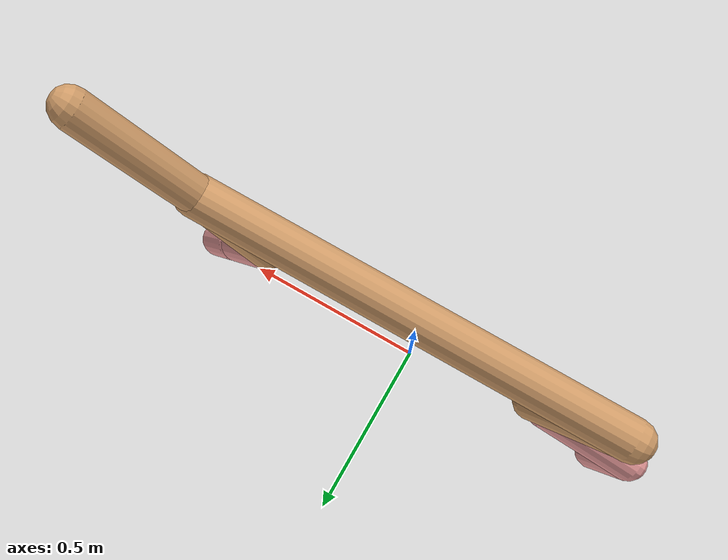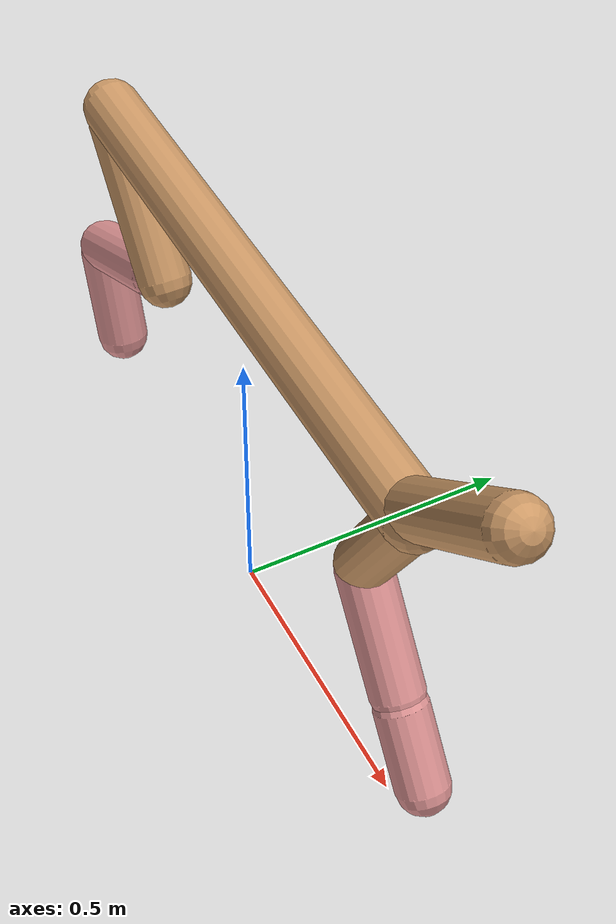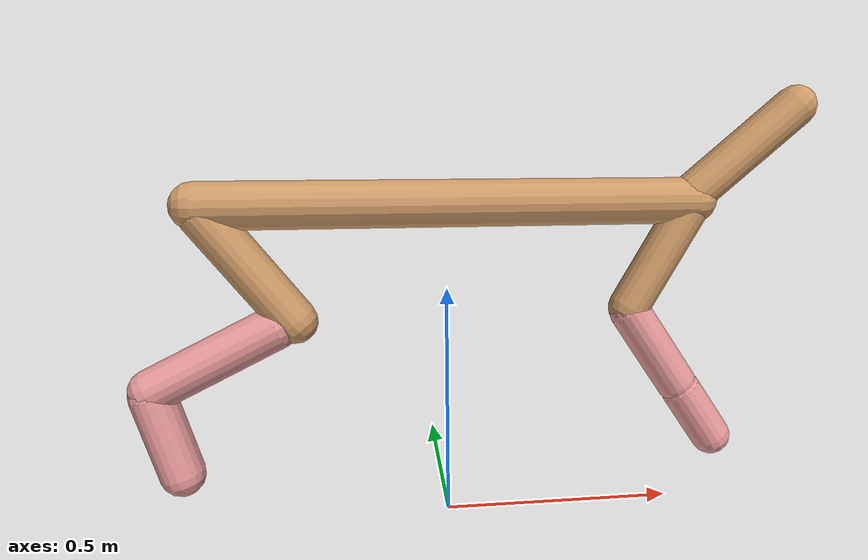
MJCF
<mujoco model="cheetah">
  <compiler angle="radian" coordinate="local" inertiafromgeom="true" settotalmass="14" />
  <default>
    <joint armature=".1" damping=".01" limited="true" solimplimit="0 .8 .03" solreflimit=".02 1" stiffness="8" />
    <geom conaffinity="0" condim="3" contype="1" friction="0.8 .1 .1" rgba="0.8 0.6 .4 1" solimp="0.0 0.8 0.01" solref="0.02 1" />
    <motor ctrllimited="true" ctrlrange="-1 1" />
  </default>
  <size nstack="300000" nuser_geom="1" />
  <option gravity="0 0 -9.81" timestep="0.01" />
  <worldbody>
    <body name="torso" pos="0.0 0.0 0.6790589900785154">
      <joint armature="0" axis="1 0 0" damping="0" limited="false" name="ignorex" pos="0 0 0" stiffness="0" type="slide" />
      <joint armature="0" axis="0 0 1" damping="0" limited="false" name="ignorez" pos="0 0 0" stiffness="0" type="slide" />
      <joint armature="0" axis="0 1 0" damping="0" limited="false" name="ignorey" pos="0 0 0" stiffness="0" type="hinge" />
      <geom fromto="-0.5 0.0 0.0 0.5307060815254704 0.0 0.0" name="torso" size="0.049351773790552146" type="capsule" />
      <geom axisangle="0 1 0 .87" name="head" pos="0.6307060815254703 0.0 0.1" size="0.044549697747472916 0.15" type="capsule" />

      <body name="bthigh" pos="-.5 0 0">
        <joint axis="0 1 0" damping="6" name="bthigh" pos="0 0 0" range="-.52 1.05" stiffness="240" type="hinge" />
        <geom axisangle="0 1 0 -3.8" name="bthigh" pos="0.09795203681842683 0.0 -0.12733764786395488" size="0.047138057705587266 0.14164109063989763" type="capsule" />
        <body name="bshin" pos="0.15590407363685366 0.0 -0.24467529572790975">
          <joint axis="0 1 0" damping="4.5" name="bshin" pos="0 0 0" range="-.785 .785" stiffness="180" type="hinge" />
          <geom axisangle="0 1 0 -2.03" name="bshin" pos="-0.13689210358919343 0.0 -0.06844605179459672" rgba="0.9 0.6 0.6 1" size="0.047138057705587266 0.14652526617920444" type="capsule" />
          <body name="bfoot" pos="-0.27378420717838686 0.0 -0.13689210358919343">
            <joint axis="0 1 0" damping="3" name="bfoot" pos="0 0 0" range="-.4 .785" stiffness="120" type="hinge" />
            <geom axisangle="0 1 0 -.27" name="bfoot" pos="0.02935661471939807 0.0 -0.09491972092605376" rgba="0.9 0.6 0.6 1" size="0.047138057705587266 0.09182250013896812" type="capsule" />
            <inertial mass="10" />
          </body>
        </body>
      </body>
      <body name="fthigh" pos="0.5307060815254703 0.0 0.0">
        <joint axis="0 1 0" damping="4.5" name="fthigh" pos="0 0 0" range="-1.5 0.8" stiffness="180" type="hinge" />
        <geom axisangle="0 1 0 .52" name="fthigh" pos="-0.0685320517120939 0.0 -0.11748351722073237" size="0.04411641537216179 0.1300866586615508" type="capsule" />
        <body name="fshin" pos="-0.1370641034241878 0.0 -0.23496703444146474">
          <joint axis="0 1 0" damping="3" name="fshin" pos="0 0 0" range="-1.2 1.1" stiffness="120" type="hinge" />
          <geom axisangle="0 1 0 -.6" name="fshin" pos="0.06364054295953875 0.0 -0.08811767486705364" rgba="0.9 0.6 0.6 1" size="0.04411641537216179 0.10367808885807808" type="capsule" />
          <body name="ffoot" pos="0.1272810859190775 0.0 -0.1762353497341073">
            <joint axis="0 1 0" damping="1.5" name="ffoot" pos="0 0 0" range="-3.1 -0.3" stiffness="60" type="hinge" />
            <geom axisangle="0 1 0 -.6" name="ffoot" pos="0.044170836081655875 0.0 -0.0687101894603536" rgba="0.9 0.6 0.6 1" size="0.04411641537216179 0.06846666245344779" type="capsule" />
            <inertial mass="10" />
          </body>
        </body>
      </body>
    </body>
  </worldbody>
  <actuator>
    <motor gear="120" joint="bthigh" name="bthigh" />
    <motor gear="90" joint="bshin" name="bshin" />
    <motor gear="60" joint="bfoot" name="bfoot" />
    <motor gear="120" joint="fthigh" name="fthigh" />
    <motor gear="60" joint="fshin" name="fshin" />
    <motor gear="30" joint="ffoot" name="ffoot" />
  </actuator>
</mujoco>
